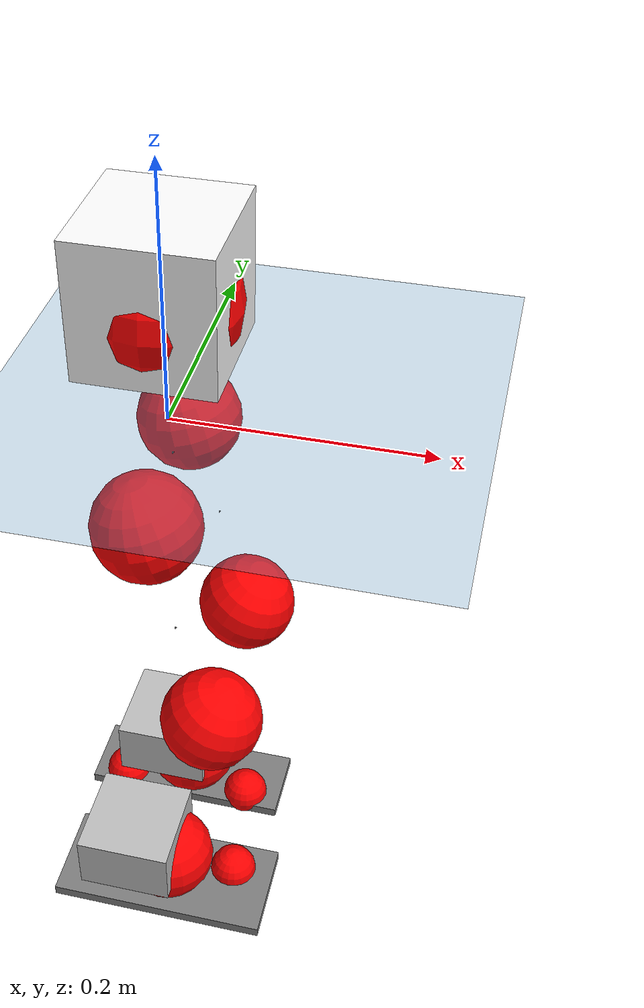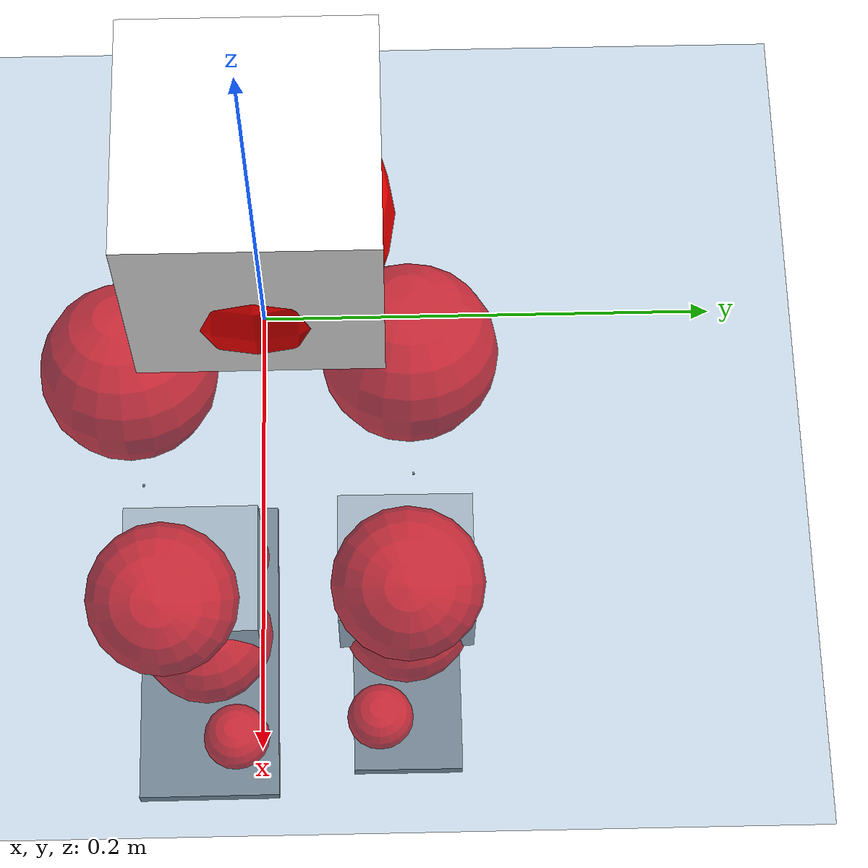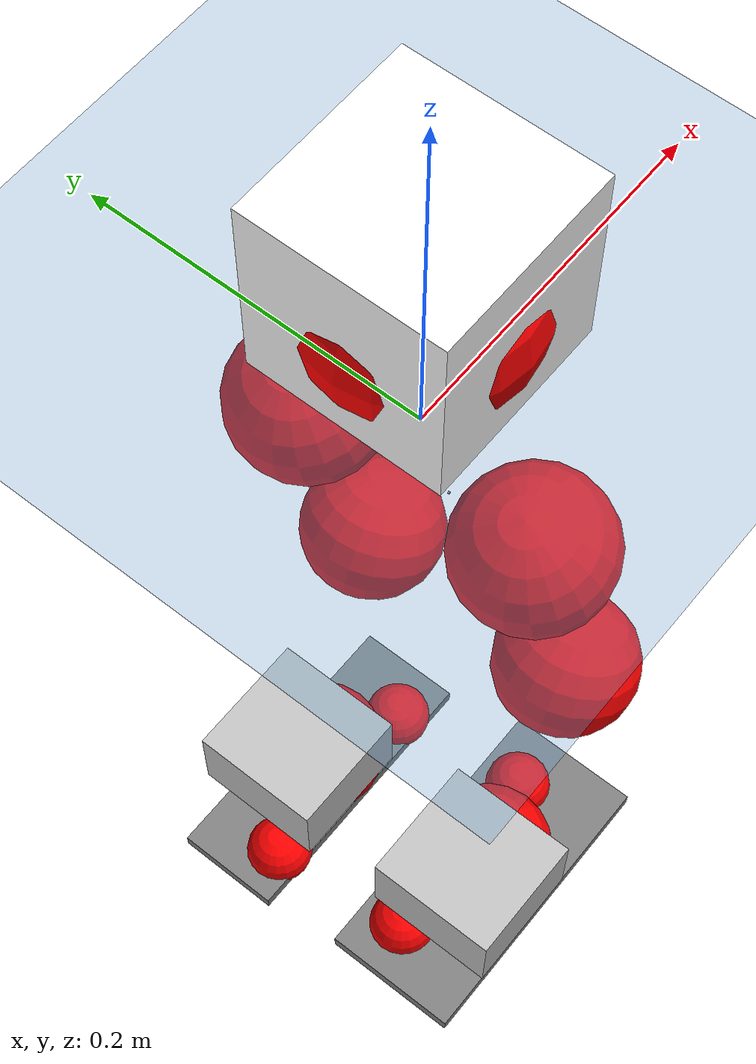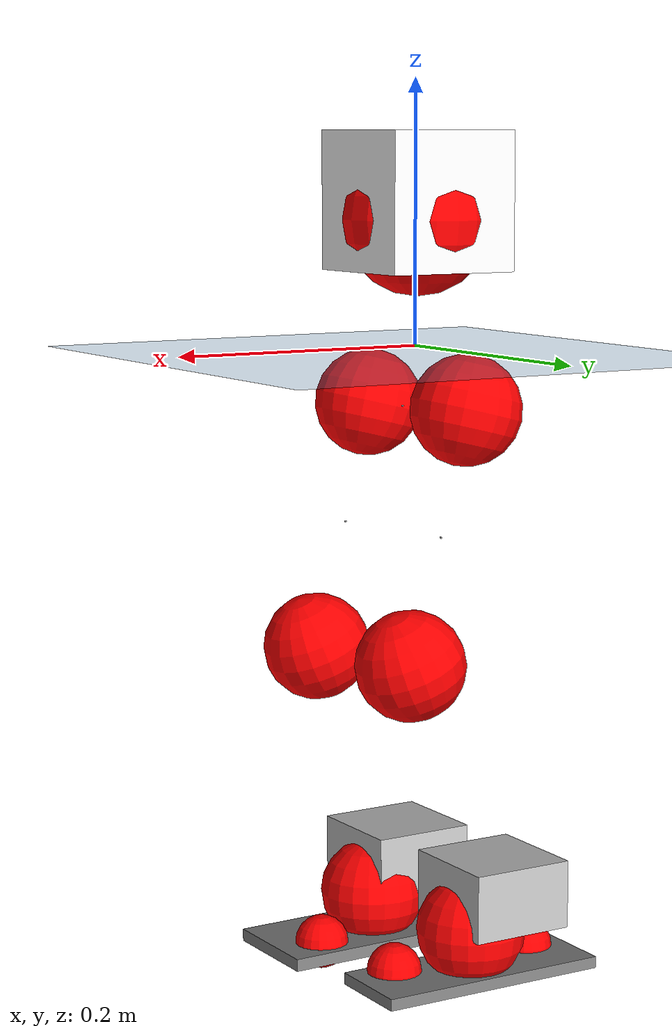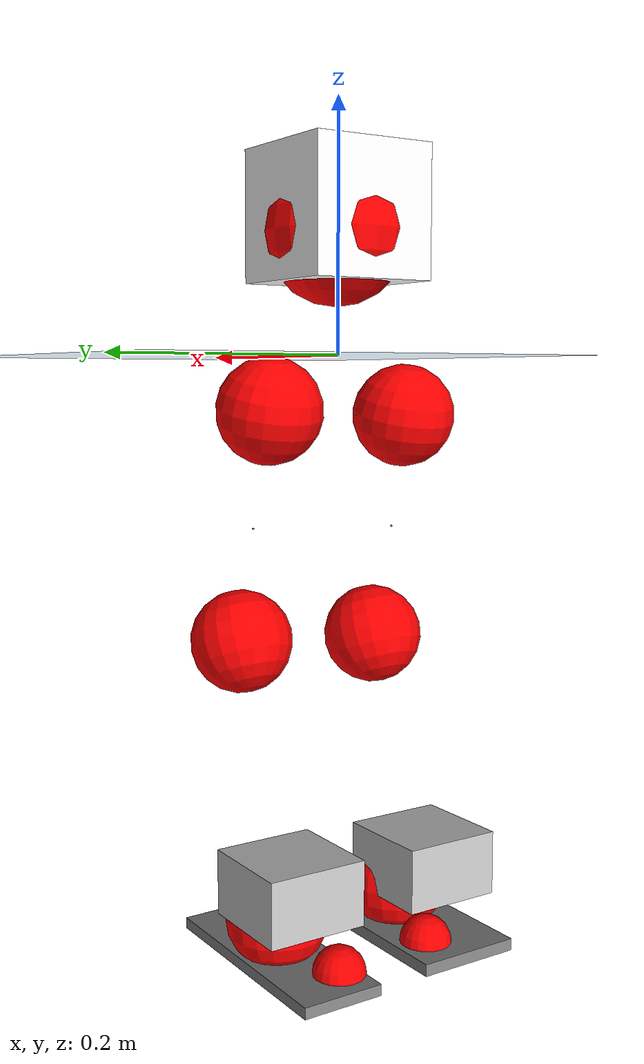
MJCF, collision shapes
<mujoco model="pi_12dof_release_v1">
  <compiler angle="radian" assetdir="assets" balanceinertia="true" inertiafromgeom="false"/>

  <option timestep="0.005" density="1.2" viscosity="2e-05"/>

  <size nkey="1"/>

  <visual>
    <quality shadowsize="8192"/>
    <map shadowclip="0.5"/>
  </visual>

  <default>
    <default class="/">
      <joint armature="0.01" damping="0.01" frictionloss="0.01"/>
      <geom contype="0" conaffinity="0" group="1" solref="-1000 -80"/>
      <site size="0.01 0.005 0.005" group="5"/>
      <general forcelimited="true" biastype="affine" gainprm="20" biasprm="0 -20 -0.5"/>
      <default class="foot">
        <geom size="0.0845 0.036 0.005" type="box" condim="6" group="4" priority="1" friction="0.9 0.2 0.2" solimp="0.015 1 0.005"/>
      </default>
      <default class="reward_collision_sphere">
        <geom group="5" rgba="1 0 0 1"/>
      </default>
    </default>
  </default>

  <asset>
    <texture type="skybox" colorspace="auto" name="//unnamed_texture_0" builtin="gradient" rgb1="0.95 0.95 0.95" rgb2="0.95 0.95 0.95" width="100" height="600"/>
    <texture type="2d" colorspace="auto" name="texplane" builtin="checker" rgb1="0.345 0.575 0.748" rgb2="0.345 0.575 0.748" markrgb="1 1 1" width="512" height="512"/>
    <material name="MatPlane" class="/" texture="texplane" texuniform="true" texrepeat="2 2" specular="0.9"/>
    <mesh name="baselink_1" class="/" file="baselink_1.STL"/>
    <mesh name="r_hip_pitch_link" class="/" file="r_hip_pitch_link.STL"/>
    <mesh name="r_hip_roll_link" class="/" file="r_hip_roll_link.STL"/>
    <mesh name="r_thigh_link" class="/" file="r_thigh_link.STL"/>
    <mesh name="r_calf_link" class="/" file="r_calf_link.STL"/>
    <mesh name="r_ankle_pitch_link" class="/" file="r_ankle_pitch_link.STL"/>
    <mesh name="r_ankle_roll_link" class="/" file="r_ankle_roll_link.STL"/>
    <mesh name="l_hip_pitch_link" class="/" file="l_hip_pitch_link.STL"/>
    <mesh name="l_hip_roll_link" class="/" file="l_hip_roll_link.STL"/>
    <mesh name="l_thigh_link" class="/" file="l_thigh_link.STL"/>
    <mesh name="l_calf_link" class="/" file="l_calf_link.STL"/>
    <mesh name="l_ankle_pitch_link" class="/" file="l_ankle_pitch_link.STL"/>
    <mesh name="l_ankle_roll_link" class="/" file="l_ankle_roll_link.STL"/>
  </asset>

  <worldbody>
    <geom name="floor" class="/" size="100 100 0.125" type="plane" group="0" material="MatPlane"/>
    <light name="toplight_shadow" class="/" pos="0 0 5" dir="0.0990148 0.0990148 -0.990148" type="directional" ambient="0.04 0.04 0.04" diffuse="0.55 0.55 0.55" specular="0.12 0.12 0.12"/>
    <light name="toplight_fill" class="/" pos="0 0 5" dir="0.0990148 0.0990148 -0.990148" type="directional" castshadow="false" ambient="0.04 0.04 0.04" diffuse="0.3 0.3 0.3" specular="0.08 0.08 0.08"/>
    <body name="trunk" pos="-0.000335683 0.00176146 -0.00192736" quat="1 -0.000349788 0.000262148 0.000273467">
      <inertial pos="0.000351759 0.00119758 0.0565807" quat="0.694973 0.00775447 0.0124052 0.718887" mass="2.53946" diaginertia="0.00540859 0.00426527 0.020762"/>
      <joint name="//unnamed_joint_0" type="free"/>
      <geom name="//unnamed_geom_1" class="/" type="mesh" density="0" rgba="1 1 1 1" mesh="baselink_1"/>
      <geom name="//unnamed_geom_2" class="/" size="0.0523005 0.0523005 0.0523005" pos="0 0 0.110855" type="box" rgba="1 1 1 1"/>
      <geom name="//unnamed_geom_3" class="reward_collision_sphere" size="0.0575305" pos="0 0 0.0969984"/>
      <site name="imu" class="/" pos="0.00805968 0.0198836 -0.0128494" size="0.0104601"/>
      <camera name="track" class="/" pos="0 -1.7226 0" quat="0.707107 0.707107 0 0" mode="trackcom"/>
      <camera name="ego_camera" class="/" pos="0.0668278 0 0.249424" quat="-0.5 -0.5 0.5 0.5"/>
      <body name="r_hip_pitch_link" pos="0.000712795 -0.0191386 -0.0453674" quat="0.992348 0.000122422 -0.123462 0.00135391">
        <inertial pos="-0.0010523 -0.0488219 -0.00155533" quat="-0.0186102 0.706223 -0.0290035 0.70715" mass="0.41135" diaginertia="5.91308e-05 4.47209e-05 0.000421089"/>
        <joint name="r_hip_pitch_joint" class="/" pos="0 0 0" axis="-0.00151506 -0.999967 -0.00804012" stiffness="0.0111905" range="-1.76488 1.26806" armature="0.00957232" damping="0.0315511" frictionloss="0.0118361"/>
        <geom name="//unnamed_geom_4" class="/" type="mesh" density="0" rgba="0.75294 0.75294 0.75294 1" mesh="r_hip_pitch_link"/>
        <geom name="//unnamed_geom_5" class="/" size="0.000523005 0.000523005 0.000523005" type="box" rgba="0.75294 0.75294 0.75294 1"/>
        <body name="r_hip_roll_link" pos="0.000763088 -0.0487733 -0.00146492" quat="1 9.26378e-05 -0.000138932 -0.000417074">
          <inertial pos="-0.000894549 0.00240242 -0.0803793" quat="0.700275 -0.0902421 -0.0831829 0.703244" mass="0.433382" diaginertia="0.000192804 0.000129228 0.000675439"/>
          <joint name="r_hip_roll_joint" class="/" pos="0 0 0" axis="-0.999999 -0.000861097 -0.000813042" range="-0.0916897 0.455481" armature="0.0119229" damping="0" frictionloss="0.00908413"/>
          <geom name="//unnamed_geom_6" class="/" type="mesh" density="0" rgba="0.75294 0.75294 0.75294 1" mesh="r_hip_roll_link"/>
          <geom name="//unnamed_geom_7" class="/" size="0.000523005 0.000523005 0.000523005" type="box" rgba="0.75294 0.75294 0.75294 1"/>
          <geom name="//unnamed_geom_8" class="reward_collision_sphere" size="0.0418404"/>
          <body name="r_thigh_link" pos="-0.00446456 -0.00285171 -0.0956068" quat="1 -0.000173609 0.000286246 -0.000449908">
            <inertial pos="-0.00192575 -0.000636545 -0.0652021" quat="0.737218 0.675654 2.42926e-05 -0.000639784" mass="0.124264" diaginertia="7.00063e-05 4.30655e-05 0.000292923"/>
            <joint name="r_thigh_joint" class="/" pos="0 0 0" axis="0.00529307 -0.00270589 -0.999982" range="-0.249948 0.634797" armature="0.0116895" damping="0" frictionloss="0.0125757"/>
            <geom name="//unnamed_geom_9" class="/" type="mesh" density="0" rgba="0.75294 0.75294 0.75294 1" mesh="r_thigh_link"/>
            <geom name="//unnamed_geom_10" class="/" size="0.000523005 0.000523005 0.000523005" type="box" rgba="0.75294 0.75294 0.75294 1"/>
            <body name="r_calf_link" pos="0.0021973 4.62645e-05 -0.100231" quat="0.947649 -2.36062e-05 0.319315 1.89029e-07">
              <inertial pos="-0.00342876 -0.00154605 -0.0973354" quat="0.999942 0.00679278 -0.00575516 0.00603343" mass="0.902632" diaginertia="0.00186675 0.00165014 0.000884908"/>
              <joint name="r_calf_joint" class="/" pos="0 0 0" axis="0.00297763 -0.999896 0.014142" stiffness="0.0100209" range="-1.69339 0.639006" armature="0.0106581" damping="0.0166244" frictionloss="0.0108018"/>
              <geom name="//unnamed_geom_11" class="/" type="mesh" density="0" rgba="0.75294 0.75294 0.75294 1" mesh="r_calf_link"/>
              <geom name="//unnamed_geom_12" class="/" size="0.000523005 0.000523005 0.000523005" type="box" rgba="0.75294 0.75294 0.75294 1"/>
              <geom name="//unnamed_geom_13" class="reward_collision_sphere" size="0.0418404"/>
              <body name="r_ankle_pitch_link" pos="0.00195487 0.000799158 -0.193129" quat="0.980198 0.000750517 -0.198014 0.00110114">
                <inertial pos="0.0054472 0.003095 0.00278603" quat="0.0151581 0.708591 0.0142915 0.705312" mass="0.201211" diaginertia="0.000163399 0.000101501 0.000591098"/>
                <joint name="r_ankle_pitch_joint" class="/" pos="0 0 0" axis="-0.0104823 -0.999931 -0.00525871" stiffness="0.00927738" range="-1.30445 0.431693" armature="0.0105306" damping="0.0125719" frictionloss="0.00970972"/>
                <geom name="//unnamed_geom_14" class="/" type="mesh" density="0" rgba="0.75294 0.75294 0.75294 1" mesh="r_ankle_pitch_link"/>
                <geom name="//unnamed_geom_15" class="/" size="0.0407944 0.0418404 0.0261502" type="box" rgba="0.75294 0.75294 0.75294 1"/>
                <body name="r_ankle_roll_link" pos="0.0714965 0.006531 0.00212362" quat="1 -0.000425831 0.000589225 0.000143316">
                  <inertial pos="-0.0196346 -0.000342027 -0.0243439" quat="0.560287 0.426768 0.429669 0.565095" mass="0.627642" diaginertia="0.000689837 0.00049058 0.00156292"/>
                  <joint name="r_ankle_roll_joint" class="/" pos="0 0 0" axis="-0.999949 -0.000969069 0.0100317" stiffness="0.00795637" range="-0.135614 0.180728" armature="0.0118763" damping="0.00131842" frictionloss="0.00960763"/>
                  <geom name="//unnamed_geom_16" class="/" type="mesh" density="0" rgba="0.75294 0.75294 0.75294 1" mesh="r_ankle_roll_link"/>
                  <geom name="//unnamed_geom_17" class="/" type="mesh" rgba="0.75294 0.75294 0.75294 1" mesh="r_ankle_roll_link"/>
                  <geom name="right_foot" class="foot" size="0.0963629 0.0437329 0.00479141" pos="-0.0454429 0 -0.0609704"/>
                  <geom name="//unnamed_geom_19" class="reward_collision_sphere" size="0.0418404" pos="-0.0445519 0 -0.0277138"/>
                  <geom name="//unnamed_geom_20" class="reward_collision_sphere" size="0.0209202" pos="0.0133656 0.017226 -0.0554277"/>
                  <geom name="//unnamed_geom_21" class="reward_collision_sphere" size="0.0209202" pos="-0.106924 0.017226 -0.0554277"/>
                  <site name="right_foot" class="foot" pos="-0.0454429 0 -0.0609704" size="0.0104601"/>
                </body>
              </body>
            </body>
          </body>
        </body>
      </body>
      <body name="l_hip_pitch_link" pos="-0.00299549 0.0179441 -0.0431182" quat="0.992198 -0.00077212 -0.124672 0.000118996">
        <inertial pos="0.000559075 0.0450997 0.00174433" quat="-0.0309235 0.705704 0.026805 0.707324" mass="0.42649" diaginertia="6.95687e-05 4.84758e-05 0.000509711"/>
        <joint name="l_hip_pitch_joint" class="/" pos="0 0 0" axis="-0.00537997 0.999982 0.00276106" stiffness="0.00143813" range="-1.24584 1.76642" armature="0.0104092" damping="0.01902" frictionloss="0.00948312"/>
        <geom name="//unnamed_geom_22" class="/" type="mesh" density="0" rgba="0.75294 0.75294 0.75294 1" mesh="l_hip_pitch_link"/>
        <geom name="//unnamed_geom_23" class="/" size="0.000523005 0.000523005 0.000523005" type="box" rgba="0.75294 0.75294 0.75294 1"/>
        <body name="l_hip_roll_link" pos="0.000803572 0.045667 0.00184813" quat="1 -0.000604699 -0.000308429 -0.000192499">
          <inertial pos="8.16763e-05 0.00283318 -0.0804041" quat="0.695924 -0.0774921 -0.0707209 0.710411" mass="0.445442" diaginertia="0.000198991 0.000134641 0.000693877"/>
          <joint name="l_hip_roll_joint" class="/" pos="0 0 0" axis="-0.999996 -0.00171445 0.00228265" stiffness="0.00859766" range="-0.448487 0.108133" armature="0.00954252" damping="0.0229853" frictionloss="0.0105466"/>
          <geom name="//unnamed_geom_24" class="/" type="mesh" density="0" rgba="0.75294 0.75294 0.75294 1" mesh="l_hip_roll_link"/>
          <geom name="//unnamed_geom_25" class="/" size="0.000523005 0.000523005 0.000523005" type="box" rgba="0.75294 0.75294 0.75294 1"/>
          <geom name="//unnamed_geom_26" class="reward_collision_sphere" size="0.0418404"/>
          <body name="l_thigh_link" pos="-0.00100657 0.00198521 -0.0957913" quat="1 7.96432e-06 -3.7754e-05 3.13061e-05">
            <inertial pos="0.00156913 -0.00243994 -0.0650781" quat="0.67422 0.738526 0.00247579 0.000220395" mass="0.127908" diaginertia="6.98648e-05 4.5858e-05 0.000283884"/>
            <joint name="l_thigh_joint" class="/" pos="0 0 0" axis="-0.00343085 -0.000336409 -0.999994" stiffness="0.017688" range="-0.614793 0.26406" armature="0.0106785" damping="0.0103026" frictionloss="0.00967284"/>
            <geom name="//unnamed_geom_27" class="/" type="mesh" density="0" rgba="0.75294 0.75294 0.75294 1" mesh="l_thigh_link"/>
            <geom name="//unnamed_geom_28" class="/" size="0.000523005 0.000523005 0.000523005" type="box" rgba="0.75294 0.75294 0.75294 1"/>
            <body name="l_calf_link" pos="0.000185084 -0.00263816 -0.0976996" quat="0.947365 4.88061e-05 0.320154 -0.000616709">
              <inertial pos="-0.000253933 0.00136515 -0.0971371" quat="0.999988 0.00258658 -0.00114751 0.00406824" mass="0.998595" diaginertia="0.0020088 0.00168037 0.00093485"/>
              <joint name="l_calf_joint" class="/" pos="0 0 0" axis="-0.00334855 0.999986 -0.00413154" range="-0.722803 1.61125" armature="0.010362" damping="0.0112487" frictionloss="0.0118292"/>
              <geom name="//unnamed_geom_29" class="/" type="mesh" density="0" rgba="0.75294 0.75294 0.75294 1" mesh="l_calf_link"/>
              <geom name="//unnamed_geom_30" class="/" size="0.000523005 0.000523005 0.000523005" type="box" rgba="0.75294 0.75294 0.75294 1"/>
              <geom name="//unnamed_geom_31" class="reward_collision_sphere" size="0.0418404"/>
              <body name="l_ankle_pitch_link" pos="0.00261263 0.000673511 -0.196985" quat="0.980034 9.89147e-05 -0.198831 -0.00019067">
                <inertial pos="0.00304502 -0.000396181 -4.16449e-05" quat="-0.00188937 0.707932 0.0019298 0.706276" mass="0.205407" diaginertia="0.00017942 0.000104843 0.00061318"/>
                <joint name="l_ankle_pitch_joint" class="/" pos="0 0 0" axis="0.00213527 0.999996 0.00206601" stiffness="0.000657421" range="-0.464446 1.26794" armature="0.0107118" damping="0" frictionloss="0.0117418"/>
                <geom name="//unnamed_geom_32" class="/" type="mesh" density="0" rgba="0.75294 0.75294 0.75294 1" mesh="l_ankle_pitch_link"/>
                <geom name="//unnamed_geom_33" class="/" size="0.0407944 0.0418404 0.0261502" type="box" rgba="0.75294 0.75294 0.75294 1"/>
                <body name="l_ankle_roll_link" pos="0.0641963 -1.36989e-05 -0.00119443" quat="0.999999 -0.00105826 -0.000540887 -5.45548e-05">
                  <inertial pos="-0.0199486 -0.000257394 -0.0192251" quat="0.567257 0.430276 0.431895 0.553669" mass="0.58857" diaginertia="0.000610892 0.000479273 0.00144043"/>
                  <joint name="l_ankle_roll_joint" class="/" pos="0 0 0" axis="-0.999936 -0.000849965 0.0112376" range="-0.106914 0.150406" armature="0.0103956" damping="0.0136232" frictionloss="0.0104937"/>
                  <geom name="//unnamed_geom_34" class="/" type="mesh" density="0" rgba="0.75294 0.75294 0.75294 1" mesh="l_ankle_roll_link"/>
                  <geom name="//unnamed_geom_35" class="/" type="mesh" rgba="0.75294 0.75294 0.75294 1" mesh="l_ankle_roll_link"/>
                  <geom name="left_foot" class="foot" size="0.092897 0.0339832 0.00448083" pos="-0.0454429 0 -0.0609704"/>
                  <geom name="//unnamed_geom_37" class="reward_collision_sphere" size="0.0418404" pos="-0.0445519 0 -0.0277138"/>
                  <geom name="//unnamed_geom_38" class="reward_collision_sphere" size="0.0209202" pos="0.0133656 -0.017226 -0.0554277"/>
                  <geom name="//unnamed_geom_39" class="reward_collision_sphere" size="0.0209202" pos="-0.106924 -0.017226 -0.0554277"/>
                  <site name="left_foot" class="foot" pos="-0.0454429 0 -0.0609704" size="0.0104601"/>
                </body>
              </body>
            </body>
          </body>
        </body>
      </body>
    </body>
  </worldbody>

  <contact>
    <pair class="/" geom1="floor" geom2="right_foot" name="//unnamed_contact_1"/>
    <pair class="/" geom1="floor" geom2="left_foot" name="//unnamed_contact_0"/>
  </contact>

  <actuator>
    <general name="r_hip_pitch_joint" class="/" joint="r_hip_pitch_joint" forcerange="-22.0054 22.0054" gainprm="21.4223" biasprm="0 -21.4223 -0.523358"/>
    <general name="r_hip_roll_joint" class="/" joint="r_hip_roll_joint" forcerange="-23.336 23.336" gainprm="21.4223" biasprm="0 -21.4223 -0.523358"/>
    <general name="r_thigh_joint" class="/" joint="r_thigh_joint" forcerange="-23.5403 23.5403" gainprm="21.4223" biasprm="0 -21.4223 -0.523358"/>
    <general name="r_calf_joint" class="/" joint="r_calf_joint" forcerange="-19.75 19.75" gainprm="21.4223" biasprm="0 -21.4223 -0.523358"/>
    <general name="r_ankle_pitch_joint" class="/" joint="r_ankle_pitch_joint" forcerange="-24.0277 24.0277" gainprm="21.4223" biasprm="0 -21.4223 -0.523358"/>
    <general name="r_ankle_roll_joint" class="/" joint="r_ankle_roll_joint" forcerange="-23.317 23.317" gainprm="21.4223" biasprm="0 -21.4223 -0.523358"/>
    <general name="l_hip_pitch_joint" class="/" joint="l_hip_pitch_joint" forcerange="-24.0016 24.0016" gainprm="21.4223" biasprm="0 -21.4223 -0.523358"/>
    <general name="l_hip_roll_joint" class="/" joint="l_hip_roll_joint" forcerange="-21.0386 21.0386" gainprm="21.4223" biasprm="0 -21.4223 -0.523358"/>
    <general name="l_thigh_joint" class="/" joint="l_thigh_joint" forcerange="-23.666 23.666" gainprm="21.4223" biasprm="0 -21.4223 -0.523358"/>
    <general name="l_calf_joint" class="/" joint="l_calf_joint" forcerange="-22.7662 22.7662" gainprm="21.4223" biasprm="0 -21.4223 -0.523358"/>
    <general name="l_ankle_pitch_joint" class="/" joint="l_ankle_pitch_joint" forcerange="-22.9756 22.9756" gainprm="21.4223" biasprm="0 -21.4223 -0.523358"/>
    <general name="l_ankle_roll_joint" class="/" joint="l_ankle_roll_joint" forcerange="-18.4003 18.4003" gainprm="21.4223" biasprm="0 -21.4223 -0.523358"/>
  </actuator>

  <sensor>
    <gyro site="imu" name="imu_angular_velocity"/>
    <velocimeter site="imu" name="imu_linear_velocity"/>
    <framelinvel objtype="site" objname="left_foot" name="left_foot_global_linear_velocity"/>
    <framelinvel objtype="site" objname="right_foot" name="right_foot_global_linear_velocity"/>
  </sensor>

  <keyframe>
    <key name="home" qpos="0 0 0.291 1 0 0 0 0.4 0 0 -0.8 0.4 0 -0.4 0 0 0.8 -0.4 0"/>
  </keyframe>
</mujoco>
